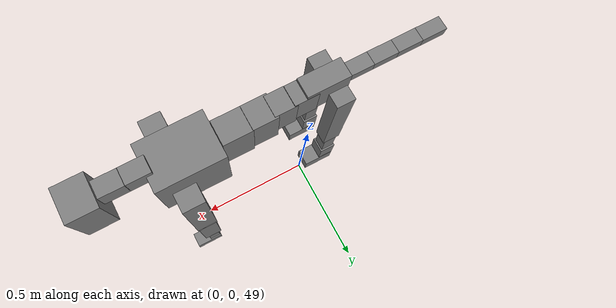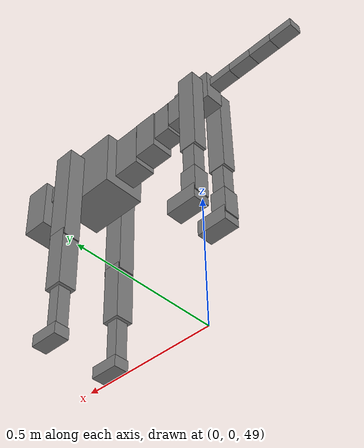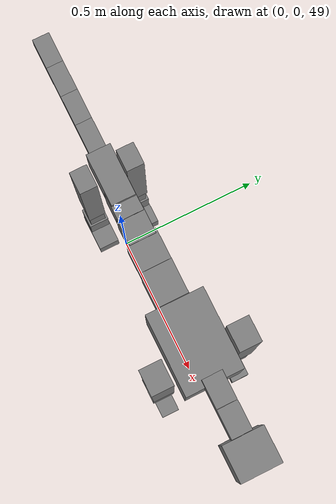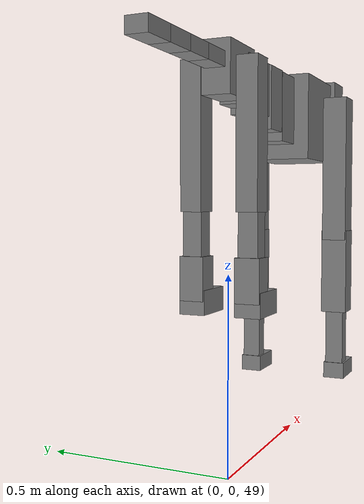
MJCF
<mujoco model="dog">

    <default>
        <joint armature="0.02" stiffness="1" damping="0.2" limited="true"/>
        <geom condim="3" friction="1 0.05 0.05" margin="0.01"/>
        <motor ctrllimited="true" ctrlrange="-1.0 1.0" forcelimited="true" gear="50"/>
    </default>

    <compiler inertiafromgeom="true" angle="radian"/>

    <option timestep="0.016" iterations="50" tolerance="1e-10" solver="Newton" jacobian="dense" cone="pyramidal"/>

    <size nconmax="20000" njmax="60000" nstack="5000000"/>
    <visual>
        <map force="0.1" zfar="30"/>
        <rgba haze="0.15 0.25 0.35 1"/>
        <quality shadowsize="2048"/>
        <global offwidth="800" offheight="800"/>
    </visual>

    <asset>
        <texture type="skybox" builtin="gradient" rgb1="0.3 0.5 0.7" rgb2="0 0 0" width="512" height="512"/>
        <texture name="texplane" type="2d" builtin="checker" rgb1=".2 .3 .4" rgb2=".1 0.15 0.2" width="512" height="512"
                 mark="cross" markrgb=".8 .8 .8"/>
        <texture name="texgeom" type="cube" builtin="flat" mark="cross" width="127" height="1278" rgb1="0.8 0.6 0.4"
                 rgb2="0.8 0.6 0.4" markrgb="1 1 1" random="0.01"/>

        <material name="matplane" reflectance="0.3" texture="texplane" texrepeat="1 1" texuniform="true"/>
        <material name="matgeom" texture="texgeom" texuniform="true" rgba="0.8 0.6 .4 1"/>
    </asset>

    <worldbody>
        <geom name="floor" pos="0 0 0" size="0 0 .25" type="plane" material="matplane" condim="3"/>

        <light directional="false" diffuse=".2 .2 .2" specular="0 0 0" pos="0 0 5" dir="0 0 -1" castshadow="false"/>
        <light mode="targetbodycom" target="torso" directional="false" diffuse=".8 .8 .8" specular="0.3 0.3 0.3"
               pos="0 0 4.0" dir="0 0 -1"/>

        <body name="root" pos="0 0 50">
            <freejoint name="root_1"/>
            <geom type="box" pos="0 0 -0.02" size="0.0774  0.0358  0.063" density="2030"/>

            <body name="spine1" pos="0.054 0 0">
                <joint name="spine1_y" axis="0 1 0" range="0 0.7" limited="true"/>
                <geom type="box" pos="0.02375 0 -0.03" size="0.04375  0.0375  0.05985" density="2030"/>

                <body name="spine2" pos="0.0612 0 0">
                    <joint name="spine2_y" axis="0 1 0" range="-0.15 0.15" limited="true"/>
                    <geom type="box" pos="0.03555  0  -0.04" size="0.04055  0.039  0.06615" density="2030"/>

                    <body name="spine3" pos="0.0730 0 0">
                        <joint name="spine3_y" axis="0 1 0" range="-0.15 0.15" limited="true"/>
                        <geom type="box" pos="0.03555  0  -0.057" size="0.04555  0.0445  0.081" density="2030"/>

                        <body name="spine4" pos="0.0780 0 0">
                            <joint name="spine4_y" axis="0 1 0" range="-0.15 0.15" limited="true"/>
                            <geom type="box" pos="0.05265  0  -0.07" size="0.05265  0.045  0.09135" density="2030"/>

                            <body name="torso" pos="0.1082 0 0">
                                <joint name="torso_y" axis="0 1 0" range="-0.15 0.15" limited="true"/>
                                <geom type="box" pos="0.11925  0  -0.085" size="0.11925  0.085  0.11745"
                                      density="2030"/>

                                <body name="neck1" pos="0.2160  0   0.0180">
                                    <joint name="neck1_y" axis="0 1 0" range="-1.2  -1" limited="true"/>
                                    <geom type="box" pos="0.0423  0  0" size="0.0423  0.03  0.036" density="2325"/>

                                    <body name="neck2" pos="0.0853  0  0">
                                        <joint name="neck2_y" axis="0 1 0" range="0.1  0" limited="true"/>
                                        <geom type="box" pos="0.0423  0  0" size="0.0423  0.03  0.036" density="2325"/>

                                        <body name="head" pos="0.0853  0  0">
                                            <joint name="head_y" axis="0 1 0" range="-0.3  -0.2" limited="true"/>
                                            <geom type="box" pos="0.0531  0  -0.055" size="0.0531  0.06  0.1044"
                                                  density="4030"/>

                                        </body>
                                    </body>
                                </body>

                                <body name="front_shoulder" pos="0.156  0   -0.0480">
                                    <joint name="front_shoulder_y" axis="0 1 0" range="-1 1.5" limited="true"/>
                                    <geom type="box" pos="0 0.13 -0.1795" size="0.0393  0.0336  0.2061" density="1158"/>
                                    <geom type="box" pos="0 -0.13 -0.1795" size="0.0393  0.0336  0.2061"
                                          density="1158"/>

                                    <body name="front_elbow" pos="0  0  -0.3589">
                                        <joint name="front_elbow_y" axis="0 1 0" range="-2 0" limited="true"/>
                                        <geom type="box" pos="0 0.13 -0.1195" size="0.0351  0.0359  0.1195"
                                              density="1081"/>
                                        <geom type="box" pos="0 -0.13 -0.1195" size="0.0351  0.0359  0.1195"
                                              density="1081"/>

                                        <body name="front_wrist" pos="0  0  -0.2389">
                                            <joint name="front_wrist_y" axis="0 1 0" range="-0.2 0" limited="true"/>
                                            <geom type="box" pos="0 0.13 -0.0837" size="0.0224  0.0249  0.0968"
                                                  density="1664"/>
                                            <geom type="box" pos="0 -0.13 -0.0837" size="0.0224  0.0249  0.0968"
                                                  density="1664"/>

                                            <body name="front_finger_end" pos="0  0  -0.1673">
                                                <joint name="front_finger_y" axis="0 1 0" range="-0.4 1"
                                                       limited="true"/>
                                                <geom type="box" pos="0.0298  0.13  -0.0078"
                                                      size="0.0547  0.0298  0.0228" density="1515"/>
                                                <geom type="box" pos="0.0298  -0.13  -0.0078"
                                                      size="0.0547  0.0298  0.0228" density="1515"/>

                                            </body>

                                        </body>
                                    </body>
                                </body>

                            </body>
                        </body>
                    </body>
                </body>
            </body>

            <body name="back_hip" pos="-0.03 0 -0.018">
                <joint name="back_hip_y" axis="0 1 0" range="-1.5 0.3" limited="true"/>
                <geom type="box" pos="0 0.07 -0.1543" size="0.0334  0.0262  0.1771" density="1154"/>
                <geom type="box" pos="0 -0.07 -0.1543" size="0.0334  0.0262  0.1771" density="1154"/>

                <body name="back_knee" pos="0  0  -0.3086">
                    <joint name="back_knee_y" axis="0 1 0" range="0 2.8" limited="true"/>
                    <geom type="box" pos="0 0.07 -0.0697" size="0.0244  0.0240  0.0852" density="1227"/>
                    <geom type="box" pos="0 -0.07 -0.0697" size="0.0244  0.0240  0.0852" density="1227"/>

                    <body name="back_ankle" pos="0  0  -0.1393">
                        <joint name="back_ankle_y" axis="0 1 0" range="-2.2 0" limited="true"/>
                        <geom type="box" pos="0 0.07 -0.0418" size="0.0302  0.0302  0.0530" density="1284"/>
                        <geom type="box" pos="0 -0.07 -0.0418" size="0.0302  0.0302  0.0530" density="1284"/>

                        <body name="back_toe_end" pos="0  0  -0.0836">
                            <joint name="back_toe_y" axis="0 1 0" range="-0.4 1" limited="true"/>
                            <geom type="box" pos="0.0319  0.07  -0.0146" size="0.0586  0.0319  0.0296" density="1515"/>
                            <geom type="box" pos="0.0319  -0.07  -0.0146" size="0.0586  0.0319  0.0296" density="1515"/>

                        </body>
                    </body>
                </body>
            </body>

            <body name="tail1" pos="-0.074 0 -0.006">
                <joint name="tail1_y" axis="0 1 0" range="-0.2 0.2" limited="true"/>
                <geom type="box" pos="-0.0536  0  0" size="0.045  0.025  0.0175" density="1587"/>

                <body name="tail2" pos="-0.09 0 0">
                    <joint name="tail2_y" axis="0 1 0" range="-0.2 0.2" limited="true"/>
                    <geom type="box" pos="-0.0536  0  0" size="0.045  0.025  0.0175" density="1587"/>

                    <body name="tail3" pos="-0.09 0 0">
                        <joint name="tail3_y" axis="0 1 0" range="-0.2 0.2" limited="true"/>
                        <geom type="box" pos="-0.0536  0  0" size="0.045  0.025  0.0175" density="1587"/>

                        <body name="tail4" pos="-0.09 0 0">
                            <joint name="tail4_y" axis="0 1 0" range="-0.2 0.2" limited="true"/>
                            <geom type="box" pos="-0.0536  0  0" size="0.045  0.025  0.0175" density="1587"/>

                        </body>
                    </body>
                </body>
            </body>
        </body>
    </worldbody>

    <actuator>
        <motor joint="spine1_y" forcerange="-150 150     "/>
        <motor joint="spine2_y" forcerange="-150 150     "/>
        <motor joint="spine3_y" forcerange="-150 150     "/>
        <motor joint="spine4_y" forcerange="-150 150     "/>
        <motor joint="torso_y" forcerange="-150 150     "/>
        <motor joint="neck1_y" forcerange="-100 100       "/>
        <motor joint="neck2_y" forcerange="-100 100       "/>
        <motor joint="head_y" forcerange="-150 150       "/>
        <motor joint="front_shoulder_y" forcerange="-171.45 152.53"/>
        <motor joint="front_elbow_y" forcerange="-179.08 182.15"/>
        <motor joint="front_wrist_y" forcerange="-128.53 70.75"/>
        <motor joint="front_finger_y" forcerange="-90.99 28.20"/>
        <motor joint="back_hip_y" forcerange="-339.58 209.33"/>
        <motor joint="back_knee_y" forcerange="-233.29 316.23"/>
        <motor joint="back_angle_y" forcerange="-195.23 188.76"/>
        <motor joint="back_toe_y" forcerange="-52.72 122.78"/>
        <motor joint="tail1_y" forcerange="-50 50     "/>
        <motor joint="tail2_y" forcerange="-50 50     "/>
        <motor joint="tail3_y" forcerange="-50 50     "/>
        <motor joint="tail4_y" forcerange="-50 50     "/>
    </actuator>
</mujoco>
